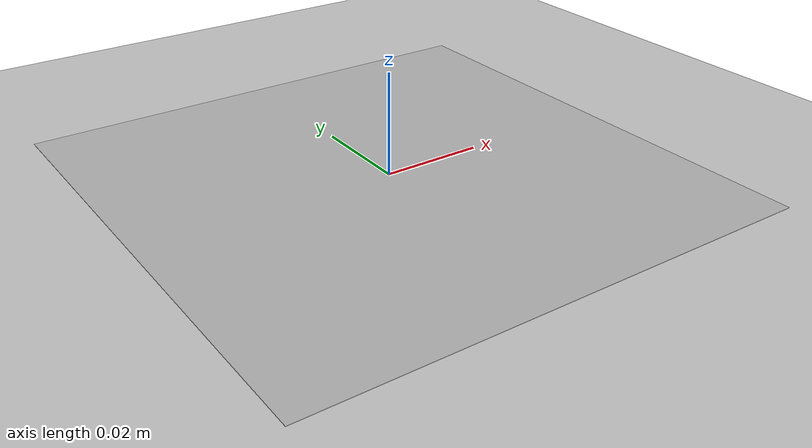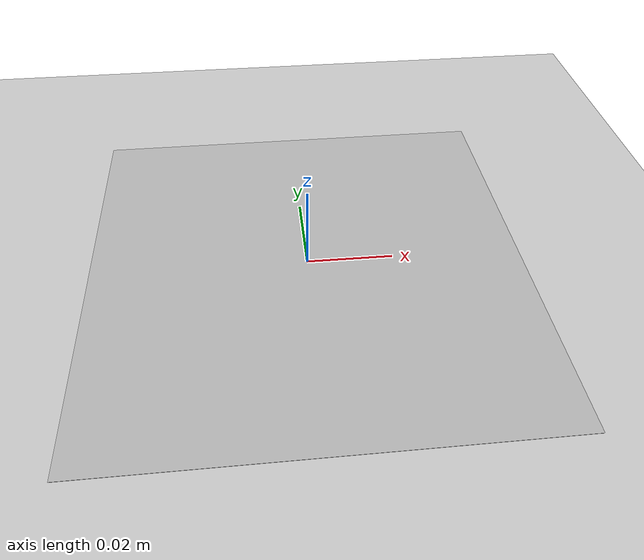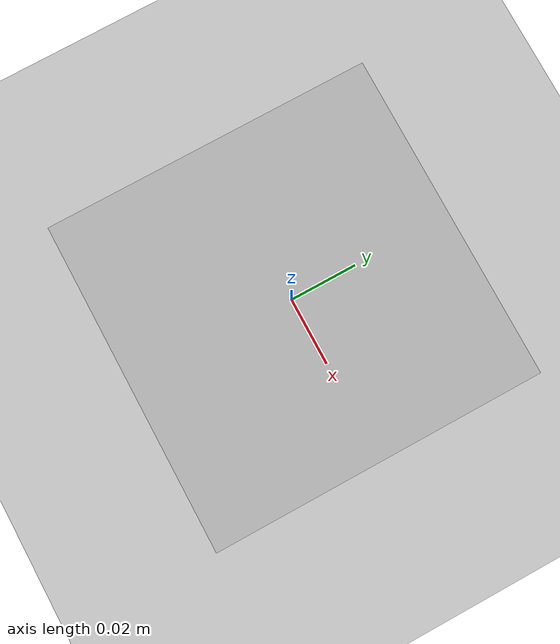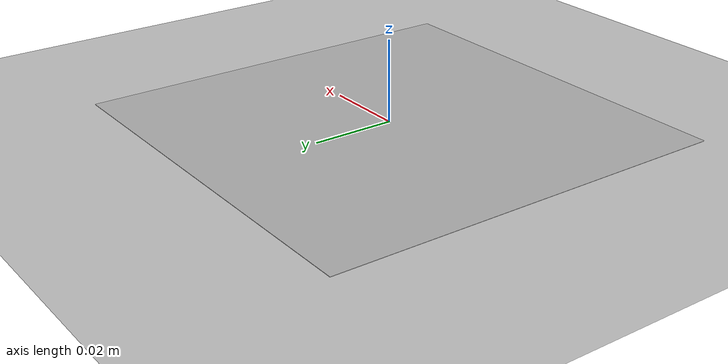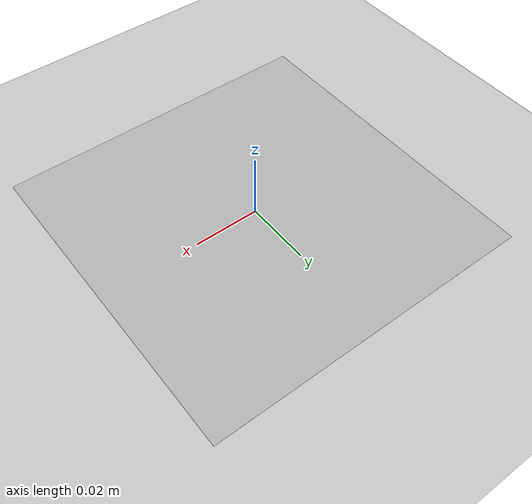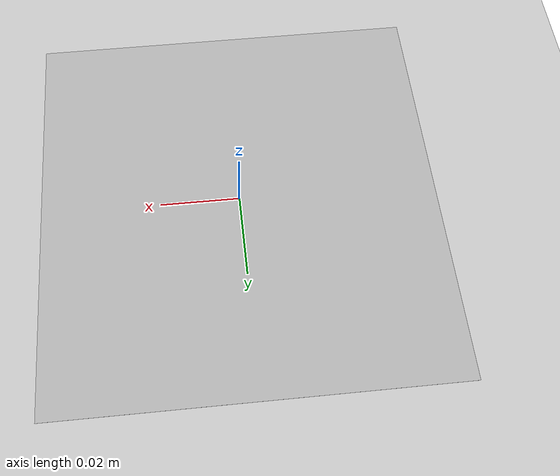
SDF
<?xml version="1.0" ?>
<sdf version="1.5">
  <world name="default">
    <!-- A global light source -->
    <include>
      <uri>model://sun</uri>
    </include>
    <!-- A ground plane -->
    <include>
      <uri>model://ground_plane</uri>
    </include>
    <physics name='default_physics' default='0' type='ode'>
      <gravity>0 0 -9.8066</gravity>
      <ode>
        <solver>
          <type>quick</type>
          <iters>10</iters>
          <sor>1.3</sor>
          <use_dynamic_moi_rescaling>0</use_dynamic_moi_rescaling>
        </solver>
        <constraints>
          <cfm>0</cfm>
          <erp>0.2</erp>
          <contact_max_correcting_vel>100</contact_max_correcting_vel>
          <contact_surface_layer>0.001</contact_surface_layer>
        </constraints>
      </ode>
      <max_step_size>0.004</max_step_size>
      <real_time_factor>1</real_time_factor>
      <real_time_update_rate>250</real_time_update_rate>
      <magnetic_field>6.0e-6 2.3e-5 -4.2e-5</magnetic_field>
    </physics>
      <include>
        <uri>model://Apriltag36_11_00000</uri>
        <pose>0 0 0 0 0 0</pose>
      </include>
  </world>
</sdf>

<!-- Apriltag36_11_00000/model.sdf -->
<sdf version='1.6'>
  <model name='Apriltag36_11_00000'>
    <link name="link">
      <inertial>
        <pose>0 0 0 0 0 0</pose>
        <mass>0.5</mass>
        <inertia>
          <ixx>0.0001</ixx>
          <ixy>0</ixy>
          <ixz>0</ixz>
          <iyy>0.0001</iyy>
          <iyz>0</iyz>
          <izz>0.0001</izz>
        </inertia>
      </inertial>
      <collision name="collision">
        <pose>0 0 0 0 0 0</pose>
        <geometry>
          <mesh>
            <uri>model://Apriltag36_11_00000/meshes/tag36_11_00000.dae</uri>
          </mesh>
        </geometry>
        <surface>
          <friction>
            <ode>
              <mu>1.0</mu>
              <mu2>1.0</mu2>
            </ode>
          </friction>
          <contact>
            <ode>
              <kp>10000000.0</kp>
              <kd>1.0</kd>
              <min_depth>0.001</min_depth>
              <max_vel>0.1</max_vel>
            </ode>
          </contact>
        </surface>
      </collision>
      <visual name="visual">
        <pose>0 0 0 0 0 0</pose>
        <geometry>
          <mesh>
            <uri>model://Apriltag36_11_00000/meshes/tag36_11_00000.dae</uri>
          </mesh>
        </geometry>
      </visual>
    </link>
  </model>
</sdf>
